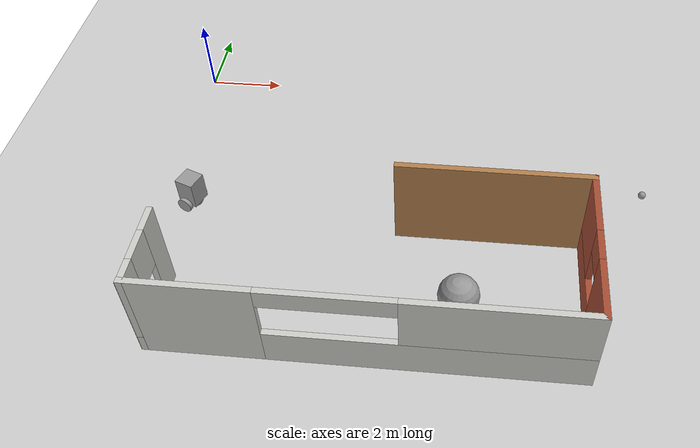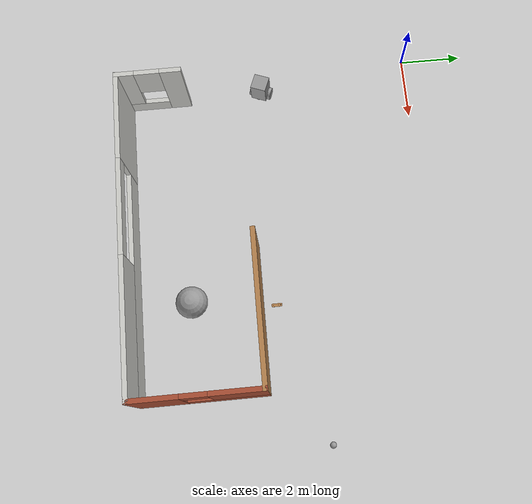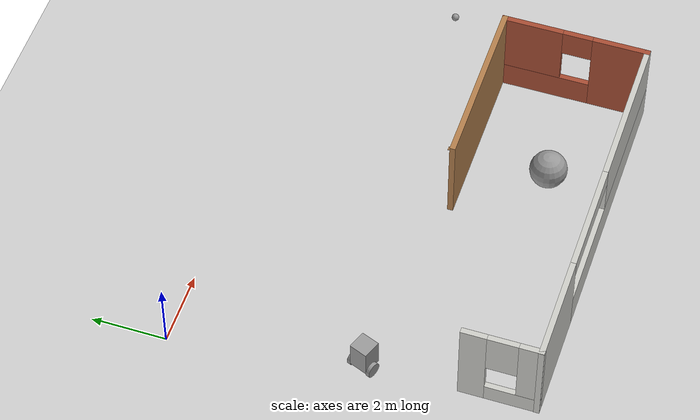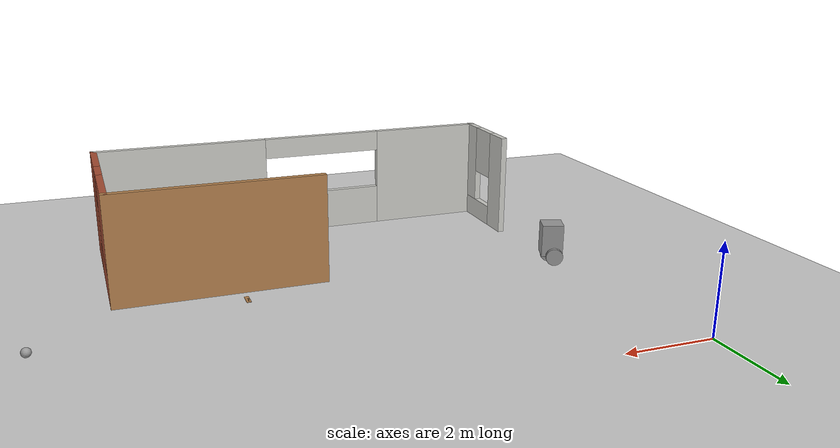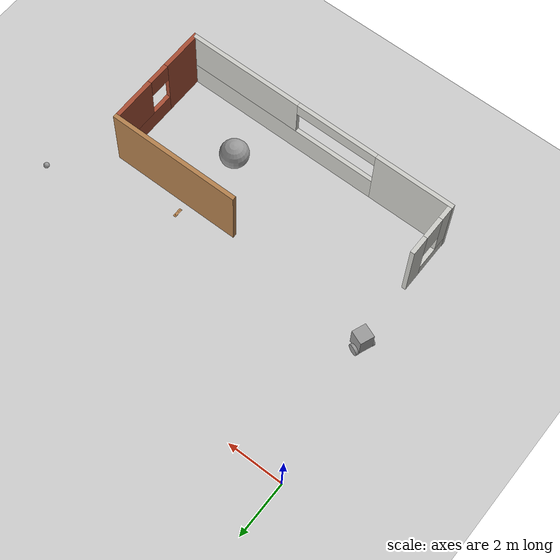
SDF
<sdf version="1.6">
 <world name="default">
  <model name="ground_plane">
   <static>1</static>
   <link name="link">
    <collision name="collision">
     <geometry><plane><normal>0 0 1</normal><size>100 100</size></plane></geometry>
     <surface><friction><ode><mu>100</mu><mu2>50</mu2></ode></friction></surface>
    </collision>
    <visual name="visual">
     <cast_shadows>0</cast_shadows>
     <geometry><plane><normal>0 0 1</normal><size>100 100</size></plane></geometry>
     <material>
      <script><uri>file://media/materials/scripts/gazebo.material</uri><name>Gazebo/Grey</name></script>
     </material>
    </visual>
   </link>
  </model>
  <model name="myrobot">
   <link name="link_0">
    <pose>0.0125 0 0.28125 0 -0 0</pose>
    <inertial>
     <mass>1</mass>
     <inertia>
      <ixx>0.166667</ixx>
      <ixy>0</ixy>
      <ixz>0</ixz>
      <iyy>0.166667</iyy>
      <iyz>0</iyz>
      <izz>0.166667</izz>
     </inertia>
    </inertial>
    <visual name="visual">
     <geometry><box><size>0.5 0.5 0.75</size></box></geometry>
     <material>
      <lighting>1</lighting>
      <script><uri>file://media/materials/scripts/gazebo.material</uri><name>Gazebo/Grey</name></script>
      <ambient>0.3 0.3 0.3 1</ambient>
      <diffuse>0.7 0.7 0.7 1</diffuse>
      <specular>0.01 0.01 0.01 1</specular>
      <emissive>0 0 0 1</emissive>
      <shader type="vertex"><normal_map>__default__</normal_map></shader>
     </material>
    </visual>
    <collision name="collision">
     <geometry><box><size>0.5 0.5 0.75</size></box></geometry>
     <surface>
      <friction>
       <ode><mu>1</mu><mu2>1</mu2><fdir1>0 0 0</fdir1><slip1>0</slip1><slip2>0</slip2></ode>
       <torsional>
        <coefficient>1</coefficient>
        <patch_radius>0</patch_radius>
        <surface_radius>0</surface_radius>
        <use_patch_radius>1</use_patch_radius>
        <ode><slip>0</slip></ode>
       </torsional>
      </friction>
      <bounce><restitution_coefficient>0</restitution_coefficient><threshold>1e+06</threshold></bounce>
      <contact>
       <collide_without_contact>0</collide_without_contact>
       <collide_without_contact_bitmask>1</collide_without_contact_bitmask>
       <collide_bitmask>1</collide_bitmask>
       <ode>
        <soft_cfm>0</soft_cfm>
        <soft_erp>0.2</soft_erp>
        <kp>1e+13</kp>
        <kd>1</kd>
        <max_vel>0.01</max_vel>
        <min_depth>0</min_depth>
       </ode>
       <bullet>
        <split_impulse>1</split_impulse>
        <split_impulse_penetration_threshold>-0.01</split_impulse_penetration_threshold>
        <soft_cfm>0</soft_cfm>
        <soft_erp>0.2</soft_erp>
        <kp>1e+13</kp>
        <kd>1</kd>
       </bullet>
      </contact>
     </surface>
    </collision>
   </link>
   <link name="link_1">
    <pose>-0.0375 0.300019 -0.09375 1.5707 -0 0</pose>
    <inertial>
     <mass>1</mass>
     <inertia><ixx>0.145833</ixx><ixy>0</ixy><ixz>0</ixz><iyy>0.145833</iyy><iyz>0</iyz><izz>0.125</izz></inertia>
    </inertial>
    <visual name="visual">
     <geometry><cylinder><radius>0.2</radius><length>0.1</length></cylinder></geometry>
     <material>
      <lighting>1</lighting>
      <script><uri>file://media/materials/scripts/gazebo.material</uri><name>Gazebo/Grey</name></script>
      <ambient>0.3 0.3 0.3 1</ambient>
      <diffuse>0.7 0.7 0.7 1</diffuse>
      <specular>0.01 0.01 0.01 1</specular>
      <emissive>0 0 0 1</emissive>
      <shader type="vertex"><normal_map>__default__</normal_map></shader>
     </material>
    </visual>
    <collision name="collision">
     <geometry><cylinder><radius>0.2</radius><length>0.1</length></cylinder></geometry>
     <surface>
      <friction>
       <ode><mu>1</mu><mu2>1</mu2><fdir1>0 0 0</fdir1><slip1>0</slip1><slip2>0</slip2></ode>
       <torsional>
        <coefficient>1</coefficient>
        <patch_radius>0</patch_radius>
        <surface_radius>0</surface_radius>
        <use_patch_radius>1</use_patch_radius>
        <ode><slip>0</slip></ode>
       </torsional>
      </friction>
      <bounce><restitution_coefficient>0</restitution_coefficient><threshold>1e+06</threshold></bounce>
      <contact>
       <collide_without_contact>0</collide_without_contact>
       <collide_without_contact_bitmask>1</collide_without_contact_bitmask>
       <collide_bitmask>1</collide_bitmask>
       <ode>
        <soft_cfm>0</soft_cfm>
        <soft_erp>0.2</soft_erp>
        <kp>1e+13</kp>
        <kd>1</kd>
        <max_vel>0.01</max_vel>
        <min_depth>0</min_depth>
       </ode>
       <bullet>
        <split_impulse>1</split_impulse>
        <split_impulse_penetration_threshold>-0.01</split_impulse_penetration_threshold>
        <soft_cfm>0</soft_cfm>
        <soft_erp>0.2</soft_erp>
        <kp>1e+13</kp>
        <kd>1</kd>
       </bullet>
      </contact>
     </surface>
    </collision>
   </link>
   <link name="link_1_clone">
    <pose>-0.0375 -0.300019 -0.09375 1.5707 -0 0</pose>
    <inertial>
     <mass>1</mass>
     <inertia><ixx>0.145833</ixx><ixy>0</ixy><ixz>0</ixz><iyy>0.145833</iyy><iyz>0</iyz><izz>0.125</izz></inertia>
    </inertial>
    <visual name="visual">
     <geometry><cylinder><radius>0.2</radius><length>0.1</length></cylinder></geometry>
     <material>
      <lighting>1</lighting>
      <script><uri>file://media/materials/scripts/gazebo.material</uri><name>Gazebo/Grey</name></script>
      <ambient>0.3 0.3 0.3 1</ambient>
      <diffuse>0.7 0.7 0.7 1</diffuse>
      <specular>0.01 0.01 0.01 1</specular>
      <emissive>0 0 0 1</emissive>
      <shader type="vertex"><normal_map>__default__</normal_map></shader>
     </material>
    </visual>
    <collision name="collision">
     <geometry><cylinder><radius>0.2</radius><length>0.1</length></cylinder></geometry>
     <surface>
      <friction>
       <ode><mu>1</mu><mu2>1</mu2><fdir1>0 0 0</fdir1><slip1>0</slip1><slip2>0</slip2></ode>
       <torsional>
        <coefficient>1</coefficient>
        <patch_radius>0</patch_radius>
        <surface_radius>0</surface_radius>
        <use_patch_radius>1</use_patch_radius>
        <ode><slip>0</slip></ode>
       </torsional>
      </friction>
      <bounce><restitution_coefficient>0</restitution_coefficient><threshold>1e+06</threshold></bounce>
      <contact>
       <collide_without_contact>0</collide_without_contact>
       <collide_without_contact_bitmask>1</collide_without_contact_bitmask>
       <collide_bitmask>1</collide_bitmask>
       <ode>
        <soft_cfm>0</soft_cfm>
        <soft_erp>0.2</soft_erp>
        <kp>1e+13</kp>
        <kd>1</kd>
        <max_vel>0.01</max_vel>
        <min_depth>0</min_depth>
       </ode>
       <bullet>
        <split_impulse>1</split_impulse>
        <split_impulse_penetration_threshold>-0.01</split_impulse_penetration_threshold>
        <soft_cfm>0</soft_cfm>
        <soft_erp>0.2</soft_erp>
        <kp>1e+13</kp>
        <kd>1</kd>
       </bullet>
      </contact>
     </surface>
    </collision>
   </link>
   <link name="link_2">
    <pose>0.0625 0 -0.09375 0 -0 0</pose>
    <inertial>
     <mass>1</mass>
     <inertia><ixx>0.1</ixx><ixy>0</ixy><ixz>0</ixz><iyy>0.1</iyy><iyz>0</iyz><izz>0.1</izz></inertia>
    </inertial>
    <visual name="visual">
     <geometry><sphere><radius>0.2</radius></sphere></geometry>
     <material>
      <lighting>1</lighting>
      <script><uri>file://media/materials/scripts/gazebo.material</uri><name>Gazebo/Grey</name></script>
      <ambient>0.3 0.3 0.3 1</ambient>
      <diffuse>0.7 0.7 0.7 1</diffuse>
      <specular>0.01 0.01 0.01 1</specular>
      <emissive>0 0 0 1</emissive>
      <shader type="vertex"><normal_map>__default__</normal_map></shader>
     </material>
    </visual>
    <collision name="collision">
     <geometry><sphere><radius>0.2</radius></sphere></geometry>
     <surface>
      <friction>
       <ode><mu>1</mu><mu2>1</mu2><fdir1>0 0 0</fdir1><slip1>0</slip1><slip2>0</slip2></ode>
       <torsional>
        <coefficient>1</coefficient>
        <patch_radius>0</patch_radius>
        <surface_radius>0</surface_radius>
        <use_patch_radius>1</use_patch_radius>
        <ode><slip>0</slip></ode>
       </torsional>
      </friction>
      <bounce><restitution_coefficient>0</restitution_coefficient><threshold>1e+06</threshold></bounce>
      <contact>
       <collide_without_contact>0</collide_without_contact>
       <collide_without_contact_bitmask>1</collide_without_contact_bitmask>
       <collide_bitmask>1</collide_bitmask>
       <ode>
        <soft_cfm>0</soft_cfm>
        <soft_erp>0.2</soft_erp>
        <kp>1e+13</kp>
        <kd>1</kd>
        <max_vel>0.01</max_vel>
        <min_depth>0</min_depth>
       </ode>
       <bullet>
        <split_impulse>1</split_impulse>
        <split_impulse_penetration_threshold>-0.01</split_impulse_penetration_threshold>
        <soft_cfm>0</soft_cfm>
        <soft_erp>0.2</soft_erp>
        <kp>1e+13</kp>
        <kd>1</kd>
       </bullet>
      </contact>
     </surface>
    </collision>
   </link>
   <joint name="link_0_JOINT_1" type="revolute">
    <parent>link_0</parent>
    <child>link_1</child>
    <axis>
     <xyz>0 0 1</xyz>
     <use_parent_model_frame>0</use_parent_model_frame>
     <limit>
      <lower>-1.79769e+308</lower>
      <upper>1.79769e+308</upper>
      <effort>-1</effort>
      <velocity>-1</velocity>
     </limit>
     <dynamics>
      <spring_reference>0</spring_reference>
      <spring_stiffness>0</spring_stiffness>
      <damping>0</damping>
     </dynamics>
    </axis>
    <physics>
     <ode><limit><cfm>0</cfm><erp>0.2</erp></limit><suspension><cfm>0</cfm><erp>0.2</erp></suspension></ode>
    </physics>
   </joint>
   <joint name="link_0_JOINT_2" type="revolute">
    <parent>link_0</parent>
    <child>link_1_clone</child>
    <axis>
     <xyz>1 0 0</xyz>
     <use_parent_model_frame>0</use_parent_model_frame>
     <limit>
      <lower>-1.79769e+308</lower>
      <upper>1.79769e+308</upper>
      <effort>-1</effort>
      <velocity>-1</velocity>
     </limit>
     <dynamics>
      <spring_reference>0</spring_reference>
      <spring_stiffness>0</spring_stiffness>
      <damping>0</damping>
     </dynamics>
    </axis>
    <physics>
     <ode><limit><cfm>0</cfm><erp>0.2</erp></limit><suspension><cfm>0</cfm><erp>0.2</erp></suspension></ode>
    </physics>
   </joint>
   <joint name="link_0_JOINT_3" type="ball">
    <parent>link_0</parent>
    <child>link_2</child>
    <physics>
     <ode><limit><cfm>0</cfm><erp>0.2</erp></limit><suspension><cfm>0</cfm><erp>0.2</erp></suspension></ode>
    </physics>
   </joint>
   <static>0</static>
   <pose>0.759058 -4.94659 0.293751 6e-06 3.5e-05 -0.368351</pose>
  </model>
  <model name="my_ball">
   <link name="link_0">
    <inertial>
     <mass>1</mass>
     <inertia><ixx>0.1</ixx><ixy>0</ixy><ixz>0</ixz><iyy>0.1</iyy><iyz>0</iyz><izz>0.1</izz></inertia>
    </inertial>
    <visual name="visual">
     <geometry><sphere><radius>0.1</radius></sphere></geometry>
     <material>
      <lighting>1</lighting>
      <script><uri>file://media/materials/scripts/gazebo.material</uri><name>Gazebo/Grey</name></script>
      <ambient>1 1 1 1</ambient>
      <diffuse>1 1 1 1</diffuse>
      <specular>1 1 1 1</specular>
      <emissive>1 1 1 1</emissive>
      <shader type="vertex"><normal_map>__default__</normal_map></shader>
     </material>
    </visual>
    <collision name="collision">
     <geometry><sphere><radius>0.1</radius></sphere></geometry>
     <surface>
      <friction>
       <ode><mu>1</mu><mu2>1</mu2><fdir1>0 0 0</fdir1><slip1>0</slip1><slip2>0</slip2></ode>
       <torsional>
        <coefficient>1</coefficient>
        <patch_radius>0</patch_radius>
        <surface_radius>0</surface_radius>
        <use_patch_radius>1</use_patch_radius>
        <ode><slip>0</slip></ode>
       </torsional>
      </friction>
      <bounce><restitution_coefficient>0</restitution_coefficient><threshold>1e+06</threshold></bounce>
      <contact>
       <collide_without_contact>0</collide_without_contact>
       <collide_without_contact_bitmask>1</collide_without_contact_bitmask>
       <collide_bitmask>1</collide_bitmask>
       <ode>
        <soft_cfm>0</soft_cfm>
        <soft_erp>0.2</soft_erp>
        <kp>1e+13</kp>
        <kd>1</kd>
        <max_vel>0.01</max_vel>
        <min_depth>0</min_depth>
       </ode>
       <bullet>
        <split_impulse>1</split_impulse>
        <split_impulse_penetration_threshold>-0.01</split_impulse_penetration_threshold>
        <soft_cfm>0</soft_cfm>
        <soft_erp>0.2</soft_erp>
        <kp>1e+13</kp>
        <kd>1</kd>
       </bullet>
      </contact>
     </surface>
    </collision>
   </link>
   <static>0</static>
   <pose>12.5143 -3.70421 0.1 0 -0 0</pose>
  </model>
  <model name="unit_sphere_0">
   <pose>7.85245 -7.65726 0.5 0 -0 0</pose>
   <link name="link">
    <inertial>
     <mass>1</mass>
     <inertia><ixx>0.1</ixx><ixy>0</ixy><ixz>0</ixz><iyy>0.1</iyy><iyz>0</iyz><izz>0.1</izz></inertia>
    </inertial>
    <collision name="collision"><geometry><sphere><radius>0.5</radius></sphere></geometry></collision>
    <visual name="visual">
     <geometry><sphere><radius>0.5</radius></sphere></geometry>
     <material>
      <script><name>Gazebo/Grey</name><uri>file://media/materials/scripts/gazebo.material</uri></script>
     </material>
    </visual>
   </link>
  </model>
  <model name="wooden_peg_board">
   <link name="wooden_board::base">
    <pose>0 0 0.00523 0 -0 0</pose>
    <inertial>
     <mass>0.2765</mass>
     <inertia>
      <ixx>0.0025148</ixx>
      <ixy>0</ixy>
      <ixz>0</ixz>
      <iyy>0.00024037</iyy>
      <iyz>0</iyz>
      <izz>0.00275013</izz>
     </inertia>
    </inertial>
    <collision name="collision">
     <geometry><box><size>0.1016 0.3302 0.01046</size></box></geometry>
     <surface>
      <contact>
       <poissons_ratio>0.347</poissons_ratio>
       <elastic_modulus>8.8e+09</elastic_modulus>
       <ode><kp>100000</kp><kd>100</kd><max_vel>100</max_vel><min_depth>0.001</min_depth></ode>
      </contact>
      <friction>
       <torsional>
        <coefficient>1</coefficient>
        <use_patch_radius>0</use_patch_radius>
        <surface_radius>0.01</surface_radius>
       </torsional>
      </friction>
     </surface>
    </collision>
    <visual name="visual">
     <geometry><box><size>0.1016 0.3302 0.01046</size></box></geometry>
     <material>
      <script><uri>file://media/materials/scripts/gazebo.material</uri><name>Gazebo/Wood</name></script>
     </material>
    </visual>
    <visual name="tee_nut_1">
     <pose>0 -0.116 0 0 -0 0</pose>
     <geometry><cylinder><radius>0.00635</radius><length>0.0105646</length></cylinder></geometry>
     <material>
      <script><uri>file://media/materials/scripts/gazebo.material</uri><name>Gazebo/Grey</name></script>
     </material>
    </visual>
    <visual name="tee_nut_2">
     <pose>0 -0.038 0 0 -0 0</pose>
     <geometry><cylinder><radius>0.00635</radius><length>0.0105646</length></cylinder></geometry>
     <material>
      <script><uri>file://media/materials/scripts/gazebo.material</uri><name>Gazebo/Grey</name></script>
     </material>
    </visual>
    <visual name="tee_nut_3">
     <pose>0 0.038 0 0 -0 0</pose>
     <geometry><cylinder><radius>0.00635</radius><length>0.0105646</length></cylinder></geometry>
     <material>
      <script><uri>file://media/materials/scripts/gazebo.material</uri><name>Gazebo/Grey</name></script>
     </material>
    </visual>
    <visual name="tee_nut_4">
     <pose>0 0.116 0 0 -0 0</pose>
     <geometry><cylinder><radius>0.00635</radius><length>0.0105646</length></cylinder></geometry>
     <material>
      <script><uri>file://media/materials/scripts/gazebo.material</uri><name>Gazebo/Grey</name></script>
     </material>
    </visual>
   </link>
   <link name="peg::link">
    <pose>0 0.116 0.04 0 -0 0</pose>
    <inertial>
     <mass>0.0175</mass>
     <inertia>
      <ixx>9.74923e-06</ixx>
      <ixy>0</ixy>
      <ixz>0</ixz>
      <iyy>9.74923e-06</iyy>
      <iyz>0</iyz>
      <izz>8.31797e-07</izz>
     </inertia>
    </inertial>
    <collision name="collision">
     <geometry><cylinder><radius>0.00975</radius><length>0.08</length></cylinder></geometry>
     <surface>
      <contact>
       <poissons_ratio>0.347</poissons_ratio>
       <elastic_modulus>8.8e+09</elastic_modulus>
       <ode><kp>100000</kp><kd>100</kd><max_vel>100</max_vel><min_depth>0.001</min_depth></ode>
      </contact>
      <friction>
       <torsional>
        <coefficient>1</coefficient>
        <use_patch_radius>0</use_patch_radius>
        <surface_radius>0.01</surface_radius>
       </torsional>
      </friction>
     </surface>
    </collision>
    <visual name="visual">
     <geometry><cylinder><radius>0.00975</radius><length>0.08</length></cylinder></geometry>
     <material>
      <script><uri>file://media/materials/scripts/gazebo.material</uri><name>Gazebo/Wood</name></script>
     </material>
    </visual>
   </link>
   <joint name="board_peg" type="revolute">
    <parent>wooden_board::base</parent>
    <child>peg::link</child>
    <axis>
     <xyz>0 0 1</xyz>
     <limit><upper>0</upper><lower>0</lower></limit>
     <use_parent_model_frame>0</use_parent_model_frame>
     <dynamics><spring_reference>0</spring_reference><spring_stiffness>0</spring_stiffness></dynamics>
    </axis>
   </joint>
   <pose>8.09401 -5.03338 -0.001004 1.3e-05 -0 -1e-06</pose>
  </model>
  <model name="mybuilding_0_0">
   <link name="Wall_102">
    <pose>-2.91535 -6.30192 0 0 0 -1.5708</pose>
    <inertial>
     <mass>1</mass>
     <inertia><ixx>1</ixx><ixy>0</ixy><ixz>0</ixz><iyy>1</iyy><iyz>0</iyz><izz>1</izz></inertia>
    </inertial>
    <visual name="Wall_102_Visual_0">
     <pose>-0.715877 0 1.25 0 -0 0</pose>
     <geometry><box><size>0.672904 0.15 2.5</size></box></geometry>
     <material>
      <script><uri>file://media/materials/scripts/gazebo.material</uri><name>Gazebo/CeilingTiled</name></script>
      <ambient>1 0.765 0.306 1</ambient>
      <diffuse>1 1 1 1</diffuse>
      <specular>0 0 0 1</specular>
      <emissive>0 0 0 1</emissive>
      <shader type="vertex"><normal_map>__default__</normal_map></shader>
     </material>
    </visual>
    <visual name="Wall_102_Visual_1">
     <pose>0.336452 0 0.25 0 -0 0</pose>
     <geometry><box><size>1.43175 0.15 0.5</size></box></geometry>
     <material>
      <script><uri>file://media/materials/scripts/gazebo.material</uri><name>Gazebo/CeilingTiled</name></script>
      <ambient>1 0.765 0.306 1</ambient>
      <diffuse>1 1 1 1</diffuse>
      <specular>0 0 0 1</specular>
      <emissive>0 0 0 1</emissive>
      <shader type="vertex"><normal_map>__default__</normal_map></shader>
     </material>
    </visual>
    <visual name="Wall_102_Visual_3">
     <pose>0.020576 0 1.9 0 -0 0</pose>
     <geometry><box><size>0.8 0.15 1.2</size></box></geometry>
     <material>
      <script><uri>file://media/materials/scripts/gazebo.material</uri><name>Gazebo/CeilingTiled</name></script>
      <ambient>1 0.765 0.306 1</ambient>
      <diffuse>1 1 1 1</diffuse>
      <specular>0 0 0 1</specular>
      <emissive>0 0 0 1</emissive>
      <shader type="vertex"><normal_map>__default__</normal_map></shader>
     </material>
    </visual>
    <visual name="Wall_102_Visual_2">
     <pose>0.736452 0 1.5 0 -0 0</pose>
     <geometry><box><size>0.631753 0.15 2</size></box></geometry>
     <material>
      <script><uri>file://media/materials/scripts/gazebo.material</uri><name>Gazebo/CeilingTiled</name></script>
      <ambient>1 0.765 0.306 1</ambient>
      <diffuse>1 1 1 1</diffuse>
      <specular>0 0 0 1</specular>
      <emissive>0 0 0 1</emissive>
      <shader type="vertex"><normal_map>__default__</normal_map></shader>
     </material>
    </visual>
    <collision name="Wall_102_Collision_3">
     <pose>0.020576 0 1.9 0 -0 0</pose>
     <geometry><box><size>0.8 0.15 1.2</size></box></geometry>
     <surface>
      <friction>
       <ode><mu>1</mu><mu2>1</mu2><fdir1>0 0 0</fdir1><slip1>0</slip1><slip2>0</slip2></ode>
       <torsional>
        <coefficient>1</coefficient>
        <patch_radius>0</patch_radius>
        <surface_radius>0</surface_radius>
        <use_patch_radius>1</use_patch_radius>
        <ode><slip>0</slip></ode>
       </torsional>
      </friction>
      <bounce><restitution_coefficient>0</restitution_coefficient><threshold>1e+06</threshold></bounce>
      <contact>
       <collide_without_contact>0</collide_without_contact>
       <collide_without_contact_bitmask>1</collide_without_contact_bitmask>
       <collide_bitmask>1</collide_bitmask>
       <ode>
        <soft_cfm>0</soft_cfm>
        <soft_erp>0.2</soft_erp>
        <kp>1e+13</kp>
        <kd>1</kd>
        <max_vel>0.01</max_vel>
        <min_depth>0</min_depth>
       </ode>
       <bullet>
        <split_impulse>1</split_impulse>
        <split_impulse_penetration_threshold>-0.01</split_impulse_penetration_threshold>
        <soft_cfm>0</soft_cfm>
        <soft_erp>0.2</soft_erp>
        <kp>1e+13</kp>
        <kd>1</kd>
       </bullet>
      </contact>
     </surface>
    </collision>
    <collision name="Wall_102_Collision_0">
     <pose>-0.715877 0 1.25 0 -0 0</pose>
     <geometry><box><size>0.672904 0.15 2.5</size></box></geometry>
     <surface>
      <friction>
       <ode><mu>1</mu><mu2>1</mu2><fdir1>0 0 0</fdir1><slip1>0</slip1><slip2>0</slip2></ode>
       <torsional>
        <coefficient>1</coefficient>
        <patch_radius>0</patch_radius>
        <surface_radius>0</surface_radius>
        <use_patch_radius>1</use_patch_radius>
        <ode><slip>0</slip></ode>
       </torsional>
      </friction>
      <bounce><restitution_coefficient>0</restitution_coefficient><threshold>1e+06</threshold></bounce>
      <contact>
       <collide_without_contact>0</collide_without_contact>
       <collide_without_contact_bitmask>1</collide_without_contact_bitmask>
       <collide_bitmask>1</collide_bitmask>
       <ode>
        <soft_cfm>0</soft_cfm>
        <soft_erp>0.2</soft_erp>
        <kp>1e+13</kp>
        <kd>1</kd>
        <max_vel>0.01</max_vel>
        <min_depth>0</min_depth>
       </ode>
       <bullet>
        <split_impulse>1</split_impulse>
        <split_impulse_penetration_threshold>-0.01</split_impulse_penetration_threshold>
        <soft_cfm>0</soft_cfm>
        <soft_erp>0.2</soft_erp>
        <kp>1e+13</kp>
        <kd>1</kd>
       </bullet>
      </contact>
     </surface>
    </collision>
    <collision name="Wall_102_Collision_1">
     <pose>0.336452 0 0.25 0 -0 0</pose>
     <geometry><box><size>1.43175 0.15 0.5</size></box></geometry>
     <surface>
      <friction>
       <ode><mu>1</mu><mu2>1</mu2><fdir1>0 0 0</fdir1><slip1>0</slip1><slip2>0</slip2></ode>
       <torsional>
        <coefficient>1</coefficient>
        <patch_radius>0</patch_radius>
        <surface_radius>0</surface_radius>
        <use_patch_radius>1</use_patch_radius>
        <ode><slip>0</slip></ode>
       </torsional>
      </friction>
      <bounce><restitution_coefficient>0</restitution_coefficient><threshold>1e+06</threshold></bounce>
      <contact>
       <collide_without_contact>0</collide_without_contact>
       <collide_without_contact_bitmask>1</collide_without_contact_bitmask>
       <collide_bitmask>1</collide_bitmask>
       <ode>
        <soft_cfm>0</soft_cfm>
        <soft_erp>0.2</soft_erp>
        <kp>1e+13</kp>
        <kd>1</kd>
        <max_vel>0.01</max_vel>
        <min_depth>0</min_depth>
       </ode>
       <bullet>
        <split_impulse>1</split_impulse>
        <split_impulse_penetration_threshold>-0.01</split_impulse_penetration_threshold>
        <soft_cfm>0</soft_cfm>
        <soft_erp>0.2</soft_erp>
        <kp>1e+13</kp>
        <kd>1</kd>
       </bullet>
      </contact>
     </surface>
    </collision>
    <collision name="Wall_102_Collision_2">
     <pose>0.736452 0 1.5 0 -0 0</pose>
     <geometry><box><size>0.631753 0.15 2</size></box></geometry>
     <surface>
      <friction>
       <ode><mu>1</mu><mu2>1</mu2><fdir1>0 0 0</fdir1><slip1>0</slip1><slip2>0</slip2></ode>
       <torsional>
        <coefficient>1</coefficient>
        <patch_radius>0</patch_radius>
        <surface_radius>0</surface_radius>
        <use_patch_radius>1</use_patch_radius>
        <ode><slip>0</slip></ode>
       </torsional>
      </friction>
      <bounce><restitution_coefficient>0</restitution_coefficient><threshold>1e+06</threshold></bounce>
      <contact>
       <collide_without_contact>0</collide_without_contact>
       <collide_without_contact_bitmask>1</collide_without_contact_bitmask>
       <collide_bitmask>1</collide_bitmask>
       <ode>
        <soft_cfm>0</soft_cfm>
        <soft_erp>0.2</soft_erp>
        <kp>1e+13</kp>
        <kd>1</kd>
        <max_vel>0.01</max_vel>
        <min_depth>0</min_depth>
       </ode>
       <bullet>
        <split_impulse>1</split_impulse>
        <split_impulse_penetration_threshold>-0.01</split_impulse_penetration_threshold>
        <soft_cfm>0</soft_cfm>
        <soft_erp>0.2</soft_erp>
        <kp>1e+13</kp>
        <kd>1</kd>
       </bullet>
      </contact>
     </surface>
    </collision>
   </link>
   <link name="Wall_104">
    <pose>2.05282 -7.27925 0 0 0 -3.1e-05</pose>
    <visual name="Wall_104_Visual_2">
     <pose>2.92537 0 1.75 0 -0 0</pose>
     <geometry><box><size>4.25299 0.15 1.5</size></box></geometry>
     <material>
      <script><uri>file://media/materials/scripts/gazebo.material</uri><name>Gazebo/CeilingTiled</name></script>
      <ambient>0.435294 0.796078 0.67451 1</ambient>
      <diffuse>1 1 1 1</diffuse>
      <specular>0 0 0 1</specular>
      <emissive>0 0 0 1</emissive>
     </material>
    </visual>
    <visual name="Wall_104_Visual_0">
     <pose>-3.62649 0 1.25 0 -0 0</pose>
     <geometry><box><size>2.85075 0.15 2.5</size></box></geometry>
     <material>
      <script><uri>file://media/materials/scripts/gazebo.material</uri><name>Gazebo/CeilingTiled</name></script>
      <ambient>0.435294 0.796078 0.67451 1</ambient>
      <diffuse>1 1 1 1</diffuse>
      <specular>0 0 0 1</specular>
      <emissive>0 0 0 1</emissive>
     </material>
    </visual>
    <visual name="Wall_104_Visual_1">
     <pose>1.42538 0 0.5 0 -0 0</pose>
     <geometry><box><size>7.25299 0.15 1</size></box></geometry>
     <material>
      <script><uri>file://media/materials/scripts/gazebo.material</uri><name>Gazebo/CeilingTiled</name></script>
      <ambient>0.435294 0.796078 0.67451 1</ambient>
      <diffuse>1 1 1 1</diffuse>
      <specular>0 0 0 1</specular>
      <emissive>0 0 0 1</emissive>
     </material>
    </visual>
    <visual name="Wall_104_Visual_3">
     <pose>-0.70112 0 2.25 0 -0 0</pose>
     <geometry><box><size>3 0.15 0.5</size></box></geometry>
     <material>
      <script><uri>file://media/materials/scripts/gazebo.material</uri><name>Gazebo/CeilingTiled</name></script>
      <ambient>0.435294 0.796078 0.67451 1</ambient>
      <diffuse>1 1 1 1</diffuse>
      <specular>0 0 0 1</specular>
      <emissive>0 0 0 1</emissive>
     </material>
    </visual>
    <collision name="Wall_104_Collision_0">
     <pose>-3.62649 0 1.25 0 -0 0</pose>
     <geometry><box><size>2.85075 0.15 2.5</size></box></geometry>
     <surface>
      <friction>
       <ode><mu>1</mu><mu2>1</mu2><fdir1>0 0 0</fdir1><slip1>0</slip1><slip2>0</slip2></ode>
       <torsional>
        <coefficient>1</coefficient>
        <patch_radius>0</patch_radius>
        <surface_radius>0</surface_radius>
        <use_patch_radius>1</use_patch_radius>
        <ode><slip>0</slip></ode>
       </torsional>
      </friction>
      <bounce><restitution_coefficient>0</restitution_coefficient><threshold>1e+06</threshold></bounce>
      <contact>
       <collide_without_contact>0</collide_without_contact>
       <collide_without_contact_bitmask>1</collide_without_contact_bitmask>
       <collide_bitmask>1</collide_bitmask>
       <ode>
        <soft_cfm>0</soft_cfm>
        <soft_erp>0.2</soft_erp>
        <kp>1e+13</kp>
        <kd>1</kd>
        <max_vel>0.01</max_vel>
        <min_depth>0</min_depth>
       </ode>
       <bullet>
        <split_impulse>1</split_impulse>
        <split_impulse_penetration_threshold>-0.01</split_impulse_penetration_threshold>
        <soft_cfm>0</soft_cfm>
        <soft_erp>0.2</soft_erp>
        <kp>1e+13</kp>
        <kd>1</kd>
       </bullet>
      </contact>
     </surface>
    </collision>
    <collision name="Wall_104_Collision_2">
     <pose>2.92537 0 1.75 0 -0 0</pose>
     <geometry><box><size>4.25299 0.15 1.5</size></box></geometry>
     <surface>
      <friction>
       <ode><mu>1</mu><mu2>1</mu2><fdir1>0 0 0</fdir1><slip1>0</slip1><slip2>0</slip2></ode>
       <torsional>
        <coefficient>1</coefficient>
        <patch_radius>0</patch_radius>
        <surface_radius>0</surface_radius>
        <use_patch_radius>1</use_patch_radius>
        <ode><slip>0</slip></ode>
       </torsional>
      </friction>
      <bounce><restitution_coefficient>0</restitution_coefficient><threshold>1e+06</threshold></bounce>
      <contact>
       <collide_without_contact>0</collide_without_contact>
       <collide_without_contact_bitmask>1</collide_without_contact_bitmask>
       <collide_bitmask>1</collide_bitmask>
       <ode>
        <soft_cfm>0</soft_cfm>
        <soft_erp>0.2</soft_erp>
        <kp>1e+13</kp>
        <kd>1</kd>
        <max_vel>0.01</max_vel>
        <min_depth>0</min_depth>
       </ode>
       <bullet>
        <split_impulse>1</split_impulse>
        <split_impulse_penetration_threshold>-0.01</split_impulse_penetration_threshold>
        <soft_cfm>0</soft_cfm>
        <soft_erp>0.2</soft_erp>
        <kp>1e+13</kp>
        <kd>1</kd>
       </bullet>
      </contact>
     </surface>
    </collision>
    <collision name="Wall_104_Collision_3">
     <pose>-0.70112 0 2.25 0 -0 0</pose>
     <geometry><box><size>3 0.15 0.5</size></box></geometry>
     <surface>
      <friction>
       <ode><mu>1</mu><mu2>1</mu2><fdir1>0 0 0</fdir1><slip1>0</slip1><slip2>0</slip2></ode>
       <torsional>
        <coefficient>1</coefficient>
        <patch_radius>0</patch_radius>
        <surface_radius>0</surface_radius>
        <use_patch_radius>1</use_patch_radius>
        <ode><slip>0</slip></ode>
       </torsional>
      </friction>
      <bounce><restitution_coefficient>0</restitution_coefficient><threshold>1e+06</threshold></bounce>
      <contact>
       <collide_without_contact>0</collide_without_contact>
       <collide_without_contact_bitmask>1</collide_without_contact_bitmask>
       <collide_bitmask>1</collide_bitmask>
       <ode>
        <soft_cfm>0</soft_cfm>
        <soft_erp>0.2</soft_erp>
        <kp>1e+13</kp>
        <kd>1</kd>
        <max_vel>0.01</max_vel>
        <min_depth>0</min_depth>
       </ode>
       <bullet>
        <split_impulse>1</split_impulse>
        <split_impulse_penetration_threshold>-0.01</split_impulse_penetration_threshold>
        <soft_cfm>0</soft_cfm>
        <soft_erp>0.2</soft_erp>
        <kp>1e+13</kp>
        <kd>1</kd>
       </bullet>
      </contact>
     </surface>
    </collision>
    <collision name="Wall_104_Collision_1">
     <pose>1.42538 0 0.5 0 -0 0</pose>
     <geometry><box><size>7.25299 0.15 1</size></box></geometry>
     <surface>
      <friction>
       <ode><mu>1</mu><mu2>1</mu2><fdir1>0 0 0</fdir1><slip1>0</slip1><slip2>0</slip2></ode>
       <torsional>
        <coefficient>1</coefficient>
        <patch_radius>0</patch_radius>
        <surface_radius>0</surface_radius>
        <use_patch_radius>1</use_patch_radius>
        <ode><slip>0</slip></ode>
       </torsional>
      </friction>
      <bounce><restitution_coefficient>0</restitution_coefficient><threshold>1e+06</threshold></bounce>
      <contact>
       <collide_without_contact>0</collide_without_contact>
       <collide_without_contact_bitmask>1</collide_without_contact_bitmask>
       <collide_bitmask>1</collide_bitmask>
       <ode>
        <soft_cfm>0</soft_cfm>
        <soft_erp>0.2</soft_erp>
        <kp>1e+13</kp>
        <kd>1</kd>
        <max_vel>0.01</max_vel>
        <min_depth>0</min_depth>
       </ode>
       <bullet>
        <split_impulse>1</split_impulse>
        <split_impulse_penetration_threshold>-0.01</split_impulse_penetration_threshold>
        <soft_cfm>0</soft_cfm>
        <soft_erp>0.2</soft_erp>
        <kp>1e+13</kp>
        <kd>1</kd>
       </bullet>
      </contact>
     </surface>
    </collision>
   </link>
   <link name="Wall_106">
    <pose>7.02969 -5.3499 0 0 -0 1.5708</pose>
    <visual name="Wall_106_Visual_0">
     <pose>-1.23742 0 1.25 0 -0 0</pose>
     <geometry><box><size>1.53383 0.15 2.5</size></box></geometry>
     <material>
      <script><uri>file://media/materials/scripts/gazebo.material</uri><name>Gazebo/Bricks</name></script>
      <ambient>1 1 1 1</ambient>
      <diffuse>1 1 1 1</diffuse>
      <specular>0.2 0.2 0.2 1</specular>
      <emissive>0 0 0 1</emissive>
     </material>
    </visual>
    <visual name="Wall_106_Visual_1">
     <pose>0.766915 0 0.375 0 -0 0</pose>
     <geometry><box><size>2.47484 0.15 0.75</size></box></geometry>
     <material>
      <script><uri>file://media/materials/scripts/gazebo.material</uri><name>Gazebo/Bricks</name></script>
      <ambient>1 1 1 1</ambient>
      <diffuse>1 1 1 1</diffuse>
      <specular>0.2 0.2 0.2 1</specular>
      <emissive>0 0 0 1</emissive>
     </material>
    </visual>
    <visual name="Wall_106_Visual_2">
     <pose>1.16691 0 1.625 0 -0 0</pose>
     <geometry><box><size>1.67484 0.15 1.75</size></box></geometry>
     <material>
      <script><uri>file://media/materials/scripts/gazebo.material</uri><name>Gazebo/Bricks</name></script>
      <ambient>1 1 1 1</ambient>
      <diffuse>1 1 1 1</diffuse>
      <specular>0.2 0.2 0.2 1</specular>
      <emissive>0 0 0 1</emissive>
     </material>
    </visual>
    <visual name="Wall_106_Visual_3">
     <pose>-0.070504 0 2.125 0 -0 0</pose>
     <geometry><box><size>0.8 0.15 0.75</size></box></geometry>
     <material>
      <script><uri>file://media/materials/scripts/gazebo.material</uri><name>Gazebo/Bricks</name></script>
      <ambient>1 1 1 1</ambient>
      <diffuse>1 1 1 1</diffuse>
      <specular>0.2 0.2 0.2 1</specular>
      <emissive>0 0 0 1</emissive>
     </material>
    </visual>
    <collision name="Wall_106_Collision_0">
     <pose>-1.23742 0 1.25 0 -0 0</pose>
     <geometry><box><size>1.53383 0.15 2.5</size></box></geometry>
     <surface>
      <friction>
       <ode><mu>1</mu><mu2>1</mu2><fdir1>0 0 0</fdir1><slip1>0</slip1><slip2>0</slip2></ode>
       <torsional>
        <coefficient>1</coefficient>
        <patch_radius>0</patch_radius>
        <surface_radius>0</surface_radius>
        <use_patch_radius>1</use_patch_radius>
        <ode><slip>0</slip></ode>
       </torsional>
      </friction>
      <bounce><restitution_coefficient>0</restitution_coefficient><threshold>1e+06</threshold></bounce>
      <contact>
       <collide_without_contact>0</collide_without_contact>
       <collide_without_contact_bitmask>1</collide_without_contact_bitmask>
       <collide_bitmask>1</collide_bitmask>
       <ode>
        <soft_cfm>0</soft_cfm>
        <soft_erp>0.2</soft_erp>
        <kp>1e+13</kp>
        <kd>1</kd>
        <max_vel>0.01</max_vel>
        <min_depth>0</min_depth>
       </ode>
       <bullet>
        <split_impulse>1</split_impulse>
        <split_impulse_penetration_threshold>-0.01</split_impulse_penetration_threshold>
        <soft_cfm>0</soft_cfm>
        <soft_erp>0.2</soft_erp>
        <kp>1e+13</kp>
        <kd>1</kd>
       </bullet>
      </contact>
     </surface>
    </collision>
    <collision name="Wall_106_Collision_2">
     <pose>1.16691 0 1.625 0 -0 0</pose>
     <geometry><box><size>1.67484 0.15 1.75</size></box></geometry>
     <surface>
      <friction>
       <ode><mu>1</mu><mu2>1</mu2><fdir1>0 0 0</fdir1><slip1>0</slip1><slip2>0</slip2></ode>
       <torsional>
        <coefficient>1</coefficient>
        <patch_radius>0</patch_radius>
        <surface_radius>0</surface_radius>
        <use_patch_radius>1</use_patch_radius>
        <ode><slip>0</slip></ode>
       </torsional>
      </friction>
      <bounce><restitution_coefficient>0</restitution_coefficient><threshold>1e+06</threshold></bounce>
      <contact>
       <collide_without_contact>0</collide_without_contact>
       <collide_without_contact_bitmask>1</collide_without_contact_bitmask>
       <collide_bitmask>1</collide_bitmask>
       <ode>
        <soft_cfm>0</soft_cfm>
        <soft_erp>0.2</soft_erp>
        <kp>1e+13</kp>
        <kd>1</kd>
        <max_vel>0.01</max_vel>
        <min_depth>0</min_depth>
       </ode>
       <bullet>
        <split_impulse>1</split_impulse>
        <split_impulse_penetration_threshold>-0.01</split_impulse_penetration_threshold>
        <soft_cfm>0</soft_cfm>
        <soft_erp>0.2</soft_erp>
        <kp>1e+13</kp>
        <kd>1</kd>
       </bullet>
      </contact>
     </surface>
    </collision>
    <collision name="Wall_106_Collision_1">
     <pose>0.766915 0 0.375 0 -0 0</pose>
     <geometry><box><size>2.47484 0.15 0.75</size></box></geometry>
     <surface>
      <friction>
       <ode><mu>1</mu><mu2>1</mu2><fdir1>0 0 0</fdir1><slip1>0</slip1><slip2>0</slip2></ode>
       <torsional>
        <coefficient>1</coefficient>
        <patch_radius>0</patch_radius>
        <surface_radius>0</surface_radius>
        <use_patch_radius>1</use_patch_radius>
        <ode><slip>0</slip></ode>
       </torsional>
      </friction>
      <bounce><restitution_coefficient>0</restitution_coefficient><threshold>1e+06</threshold></bounce>
      <contact>
       <collide_without_contact>0</collide_without_contact>
       <collide_without_contact_bitmask>1</collide_without_contact_bitmask>
       <collide_bitmask>1</collide_bitmask>
       <ode>
        <soft_cfm>0</soft_cfm>
        <soft_erp>0.2</soft_erp>
        <kp>1e+13</kp>
        <kd>1</kd>
        <max_vel>0.01</max_vel>
        <min_depth>0</min_depth>
       </ode>
       <bullet>
        <split_impulse>1</split_impulse>
        <split_impulse_penetration_threshold>-0.01</split_impulse_penetration_threshold>
        <soft_cfm>0</soft_cfm>
        <soft_erp>0.2</soft_erp>
        <kp>1e+13</kp>
        <kd>1</kd>
       </bullet>
      </contact>
     </surface>
    </collision>
    <collision name="Wall_106_Collision_3">
     <pose>-0.070504 0 2.125 0 -0 0</pose>
     <geometry><box><size>0.8 0.15 0.75</size></box></geometry>
     <surface>
      <friction>
       <ode><mu>1</mu><mu2>1</mu2><fdir1>0 0 0</fdir1><slip1>0</slip1><slip2>0</slip2></ode>
       <torsional>
        <coefficient>1</coefficient>
        <patch_radius>0</patch_radius>
        <surface_radius>0</surface_radius>
        <use_patch_radius>1</use_patch_radius>
        <ode><slip>0</slip></ode>
       </torsional>
      </friction>
      <bounce><restitution_coefficient>0</restitution_coefficient><threshold>1e+06</threshold></bounce>
      <contact>
       <collide_without_contact>0</collide_without_contact>
       <collide_without_contact_bitmask>1</collide_without_contact_bitmask>
       <collide_bitmask>1</collide_bitmask>
       <ode>
        <soft_cfm>0</soft_cfm>
        <soft_erp>0.2</soft_erp>
        <kp>1e+13</kp>
        <kd>1</kd>
        <max_vel>0.01</max_vel>
        <min_depth>0</min_depth>
       </ode>
       <bullet>
        <split_impulse>1</split_impulse>
        <split_impulse_penetration_threshold>-0.01</split_impulse_penetration_threshold>
        <soft_cfm>0</soft_cfm>
        <soft_erp>0.2</soft_erp>
        <kp>1e+13</kp>
        <kd>1</kd>
       </bullet>
      </contact>
     </surface>
    </collision>
   </link>
   <link name="Wall_108">
    <pose>4.72945 -3.42056 0 0 0 -3.14152</pose>
    <visual name="Wall_108_Visual">
     <pose>0 0 1.25 0 -0 0</pose>
     <geometry><box><size>4.75 0.15 2.5</size></box></geometry>
     <material>
      <script><uri>file://media/materials/scripts/gazebo.material</uri><name>Gazebo/Wood</name></script>
      <ambient>1 1 0.498039 1</ambient>
      <diffuse>1 1 1 1</diffuse>
      <specular>0.2 0.2 0.2 1</specular>
      <emissive>0 0 0 1</emissive>
     </material>
    </visual>
    <collision name="Wall_108_Collision">
     <pose>0 0 1.25 0 -0 0</pose>
     <geometry><box><size>4.75 0.15 2.5</size></box></geometry>
     <surface>
      <friction>
       <ode><mu>1</mu><mu2>1</mu2><fdir1>0 0 0</fdir1><slip1>0</slip1><slip2>0</slip2></ode>
       <torsional>
        <coefficient>1</coefficient>
        <patch_radius>0</patch_radius>
        <surface_radius>0</surface_radius>
        <use_patch_radius>1</use_patch_radius>
        <ode><slip>0</slip></ode>
       </torsional>
      </friction>
      <bounce><restitution_coefficient>0</restitution_coefficient><threshold>1e+06</threshold></bounce>
      <contact>
       <collide_without_contact>0</collide_without_contact>
       <collide_without_contact_bitmask>1</collide_without_contact_bitmask>
       <collide_bitmask>1</collide_bitmask>
       <ode>
        <soft_cfm>0</soft_cfm>
        <soft_erp>0.2</soft_erp>
        <kp>1e+13</kp>
        <kd>1</kd>
        <max_vel>0.01</max_vel>
        <min_depth>0</min_depth>
       </ode>
       <bullet>
        <split_impulse>1</split_impulse>
        <split_impulse_penetration_threshold>-0.01</split_impulse_penetration_threshold>
        <soft_cfm>0</soft_cfm>
        <soft_erp>0.2</soft_erp>
        <kp>1e+13</kp>
        <kd>1</kd>
       </bullet>
      </contact>
     </surface>
    </collision>
   </link>
   <static>1</static>
   <pose>3.78931 -2.0956 0 0 -0 0</pose>
  </model>
 </world>
</sdf>
